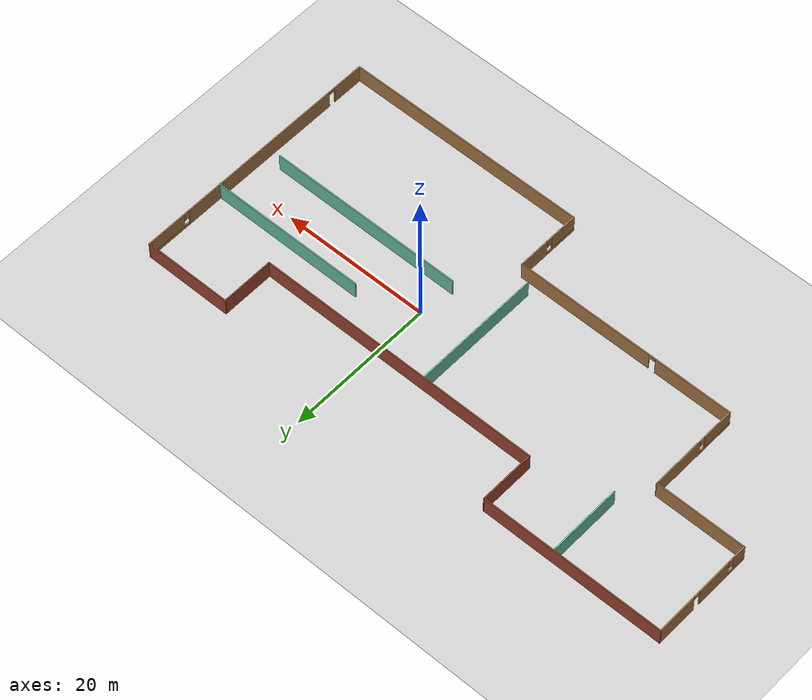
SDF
<sdf version="1.7">
 <world name="default">
  <model name="ground_plane">
   <static>1</static>
   <link name="link">
    <collision name="collision">
     <geometry><plane><normal>0 0 1</normal><size>100 100</size></plane></geometry>
     <surface>
      <contact><collide_bitmask>65535</collide_bitmask></contact>
      <friction><ode><mu>100</mu><mu2>50</mu2></ode></friction>
     </surface>
    </collision>
    <visual name="visual">
     <cast_shadows>0</cast_shadows>
     <geometry><plane><normal>0 0 1</normal><size>100 100</size></plane></geometry>
     <material>
      <script><uri>file://media/materials/scripts/gazebo.material</uri><name>Gazebo/Grey</name></script>
     </material>
    </visual>
   </link>
  </model>
  <model name="model">
   <pose>-9.63268 -2.63043 0 0 -0 0</pose>
   <link name="Wall_10">
    <collision name="Wall_10_Collision">
     <geometry><box><size>7.25 0.15 2.5</size></box></geometry>
     <pose>0 0 1.25 0 -0 0</pose>
    </collision>
    <visual name="Wall_10_Visual">
     <pose>0 0 1.25 0 -0 0</pose>
     <geometry><box><size>7.25 0.15 2.5</size></box></geometry>
     <material>
      <script><uri>file://media/materials/scripts/gazebo.material</uri><name>Gazebo/Bricks</name></script>
      <ambient>1 1 1 1</ambient>
     </material>
     <meta><layer>0</layer></meta>
    </visual>
    <pose>25.763 13.7499 0 0 -0 -1.5708</pose>
   </link>
   <link name="Wall_11">
    <collision name="Wall_11_Collision">
     <geometry><box><size>39 0.15 2.5</size></box></geometry>
     <pose>0 0 1.25 0 -0 0</pose>
    </collision>
    <visual name="Wall_11_Visual">
     <pose>0 0 1.25 0 -0 0</pose>
     <geometry><box><size>39 0.15 2.5</size></box></geometry>
     <material>
      <script><uri>file://media/materials/scripts/gazebo.material</uri><name>Gazebo/Bricks</name></script>
      <ambient>1 1 1 1</ambient>
     </material>
     <meta><layer>0</layer></meta>
    </visual>
    <pose>6.33798 10.1999 0 0 -0 3.14159</pose>
   </link>
   <link name="Wall_12">
    <collision name="Wall_12_Collision">
     <geometry><box><size>7.5 0.15 2.5</size></box></geometry>
     <pose>0 0 1.25 0 -0 0</pose>
    </collision>
    <visual name="Wall_12_Visual">
     <pose>0 0 1.25 0 -0 0</pose>
     <geometry><box><size>7.5 0.15 2.5</size></box></geometry>
     <material>
      <script><uri>file://media/materials/scripts/gazebo.material</uri><name>Gazebo/Bricks</name></script>
      <ambient>1 1 1 1</ambient>
     </material>
     <meta><layer>0</layer></meta>
    </visual>
    <pose>-13.087 13.8749 0 0 -0 1.5708</pose>
   </link>
   <link name="Wall_13">
    <collision name="Wall_13_Collision">
     <geometry><box><size>24.7501 0.15 2.5</size></box></geometry>
     <pose>0 0 1.25 0 -0 0</pose>
    </collision>
    <visual name="Wall_13_Visual">
     <pose>0 0 1.25 0 -0 0</pose>
     <geometry><box><size>24.7501 0.15 2.5</size></box></geometry>
     <material>
      <script><uri>file://media/materials/scripts/gazebo.material</uri><name>Gazebo/Bricks</name></script>
      <ambient>1 1 1 1</ambient>
     </material>
     <meta><layer>0</layer></meta>
    </visual>
    <pose>-25.387 17.5249 0 0 -0 -3.13956</pose>
   </link>
   <link name="Wall_15">
    <collision name="Wall_15_Collision">
     <geometry><box><size>26.75 0.15 2.5</size></box></geometry>
     <pose>0 0 1.25 0 -0 0</pose>
    </collision>
    <visual name="Wall_15_Visual">
     <pose>0 0 1.25 0 -0 0</pose>
     <geometry><box><size>26.75 0.15 2.5</size></box></geometry>
     <material>
      <script><uri>file://media/materials/scripts/gazebo.material</uri><name>Gazebo/Grey</name></script>
      <ambient>0.435294 0.796078 0.67451 1</ambient>
     </material>
     <meta><layer>0</layer></meta>
    </visual>
    <pose>22.0838 -1.70354 0 0 -0 3.14159</pose>
   </link>
   <link name="Wall_18">
    <collision name="Wall_18_Collision">
     <geometry><box><size>21.25 0.15 2.5</size></box></geometry>
     <pose>0 0 1.25 0 -0 0</pose>
    </collision>
    <visual name="Wall_18_Visual">
     <pose>0 0 1.25 0 -0 0</pose>
     <geometry><box><size>21.25 0.15 2.5</size></box></geometry>
     <material>
      <script><uri>file://media/materials/scripts/gazebo.material</uri><name>Gazebo/Grey</name></script>
      <ambient>0.435294 0.796078 0.67451 1</ambient>
     </material>
     <meta><layer>0</layer></meta>
    </visual>
    <pose>27.1372 5.86393 0 0 -0 0</pose>
   </link>
   <link name="Wall_2">
    <pose>-37.687 10.5749 0 0 -0 -1.5708</pose>
    <visual name="Wall_2_Visual_0">
     <pose>-4.21747 0 1.25 0 -0 0</pose>
     <geometry><box><size>5.56506 0.15 2.5</size></box></geometry>
     <material>
      <script><uri>file://media/materials/scripts/gazebo.material</uri><name>Gazebo/Wood</name></script>
      <ambient>1 1 1 1</ambient>
     </material>
     <meta><layer>0</layer></meta>
    </visual>
    <collision name="Wall_2_Collision_0">
     <geometry><box><size>5.56506 0.15 2.5</size></box></geometry>
     <pose>-4.21747 0 1.25 0 -0 0</pose>
    </collision>
    <visual name="Wall_2_Visual_1">
     <pose>1.88803 0 1.25 0 -0 0</pose>
     <geometry><box><size>4.84594 0.15 2.5</size></box></geometry>
     <material>
      <script><uri>file://media/materials/scripts/gazebo.material</uri><name>Gazebo/Wood</name></script>
      <ambient>1 1 1 1</ambient>
     </material>
     <meta><layer>0</layer></meta>
    </visual>
    <collision name="Wall_2_Collision_1">
     <geometry><box><size>4.84594 0.15 2.5</size></box></geometry>
     <pose>1.88803 0 1.25 0 -0 0</pose>
    </collision>
    <visual name="Wall_2_Visual_2">
     <pose>5.6555 0 0.25 0 -0 0</pose>
     <geometry><box><size>2.689 0.15 0.5</size></box></geometry>
     <material>
      <script><uri>file://media/materials/scripts/gazebo.material</uri><name>Gazebo/Wood</name></script>
      <ambient>1 1 1 1</ambient>
     </material>
     <meta><layer>0</layer></meta>
    </visual>
    <collision name="Wall_2_Collision_2">
     <geometry><box><size>2.689 0.15 0.5</size></box></geometry>
     <pose>5.6555 0 0.25 0 -0 0</pose>
    </collision>
    <visual name="Wall_2_Visual_3">
     <pose>6.0555 0 1.5 0 -0 0</pose>
     <geometry><box><size>1.889 0.15 2</size></box></geometry>
     <material>
      <script><uri>file://media/materials/scripts/gazebo.material</uri><name>Gazebo/Wood</name></script>
      <ambient>1 1 1 1</ambient>
     </material>
     <meta><layer>0</layer></meta>
    </visual>
    <collision name="Wall_2_Collision_3">
     <geometry><box><size>1.889 0.15 2</size></box></geometry>
     <pose>6.0555 0 1.5 0 -0 0</pose>
    </collision>
    <visual name="Wall_2_Visual_4">
     <pose>4.711 0 1.9 0 -0 0</pose>
     <geometry><box><size>0.8 0.15 1.2</size></box></geometry>
     <material>
      <script><uri>file://media/materials/scripts/gazebo.material</uri><name>Gazebo/Wood</name></script>
      <ambient>1 1 1 1</ambient>
     </material>
     <meta><layer>0</layer></meta>
    </visual>
    <collision name="Wall_2_Collision_4">
     <geometry><box><size>0.8 0.15 1.2</size></box></geometry>
     <pose>4.711 0 1.9 0 -0 0</pose>
    </collision>
    <visual name="Wall_2_Visual_5">
     <pose>-0.984945 0 2.25 0 -0 0</pose>
     <geometry><box><size>0.9 0.15 0.5</size></box></geometry>
     <material>
      <script><uri>file://media/materials/scripts/gazebo.material</uri><name>Gazebo/Wood</name></script>
      <ambient>1 1 1 1</ambient>
     </material>
     <meta><layer>0</layer></meta>
    </visual>
    <collision name="Wall_2_Collision_5">
     <geometry><box><size>0.9 0.15 0.5</size></box></geometry>
     <pose>-0.984945 0 2.25 0 -0 0</pose>
    </collision>
   </link>
   <link name="Wall_20">
    <collision name="Wall_20_Collision">
     <geometry><box><size>17.5 0.15 2.5</size></box></geometry>
     <pose>0 0 1.25 0 -0 0</pose>
    </collision>
    <visual name="Wall_20_Visual">
     <pose>0 0 1.25 0 -0 0</pose>
     <geometry><box><size>17.5 0.15 2.5</size></box></geometry>
     <material>
      <script><uri>file://media/materials/scripts/gazebo.material</uri><name>Gazebo/Grey</name></script>
      <ambient>0.435294 0.796078 0.67451 1</ambient>
     </material>
     <meta><layer>0</layer></meta>
    </visual>
    <pose>2.34732 1.51963 0 0 -0 1.5708</pose>
   </link>
   <link name="Wall_22">
    <collision name="Wall_22_Collision">
     <geometry><box><size>10 0.15 2.5</size></box></geometry>
     <pose>0 0 1.25 0 -0 0</pose>
    </collision>
    <visual name="Wall_22_Visual">
     <pose>0 0 1.25 0 -0 0</pose>
     <geometry><box><size>10 0.15 2.5</size></box></geometry>
     <material>
      <script><uri>file://media/materials/scripts/gazebo.material</uri><name>Gazebo/Grey</name></script>
      <ambient>0.435294 0.796078 0.67451 1</ambient>
     </material>
     <meta><layer>0</layer></meta>
    </visual>
    <pose>-22.8776 12.4936 0 0 -0 -1.5708</pose>
   </link>
   <link name="Wall_3">
    <collision name="Wall_3_Collision">
     <geometry><box><size>12.25 0.15 2.5</size></box></geometry>
     <pose>0 0 1.25 0 -0 0</pose>
    </collision>
    <visual name="Wall_3_Visual">
     <pose>0 0 1.25 0 -0 0</pose>
     <geometry><box><size>12.25 0.15 2.5</size></box></geometry>
     <material>
      <script><uri>file://media/materials/scripts/gazebo.material</uri><name>Gazebo/Wood</name></script>
      <ambient>1 1 1 1</ambient>
     </material>
     <meta><layer>0</layer></meta>
    </visual>
    <pose>-31.637 3.64993 0 0 -0 0</pose>
   </link>
   <link name="Wall_4">
    <pose>-25.587 -2.52507 0 0 -0 -1.5708</pose>
    <visual name="Wall_4_Visual_0">
     <pose>-2.59658 0 1.25 0 -0 0</pose>
     <geometry><box><size>7.30684 0.15 2.5</size></box></geometry>
     <material>
      <script><uri>file://media/materials/scripts/gazebo.material</uri><name>Gazebo/Wood</name></script>
      <ambient>1 1 1 1</ambient>
     </material>
     <meta><layer>0</layer></meta>
    </visual>
    <collision name="Wall_4_Collision_0">
     <geometry><box><size>7.30684 0.15 2.5</size></box></geometry>
     <pose>-2.59658 0 1.25 0 -0 0</pose>
    </collision>
    <visual name="Wall_4_Visual_1">
     <pose>3.65342 0 0.25 0 -0 0</pose>
     <geometry><box><size>5.19316 0.15 0.5</size></box></geometry>
     <material>
      <script><uri>file://media/materials/scripts/gazebo.material</uri><name>Gazebo/Wood</name></script>
      <ambient>1 1 1 1</ambient>
     </material>
     <meta><layer>0</layer></meta>
    </visual>
    <collision name="Wall_4_Collision_1">
     <geometry><box><size>5.19316 0.15 0.5</size></box></geometry>
     <pose>3.65342 0 0.25 0 -0 0</pose>
    </collision>
    <visual name="Wall_4_Visual_2">
     <pose>4.05342 0 1.5 0 -0 0</pose>
     <geometry><box><size>4.39316 0.15 2</size></box></geometry>
     <material>
      <script><uri>file://media/materials/scripts/gazebo.material</uri><name>Gazebo/Wood</name></script>
      <ambient>1 1 1 1</ambient>
     </material>
     <meta><layer>0</layer></meta>
    </visual>
    <collision name="Wall_4_Collision_2">
     <geometry><box><size>4.39316 0.15 2</size></box></geometry>
     <pose>4.05342 0 1.5 0 -0 0</pose>
    </collision>
    <visual name="Wall_4_Visual_3">
     <pose>1.45684 0 1.9 0 -0 0</pose>
     <geometry><box><size>0.8 0.15 1.2</size></box></geometry>
     <material>
      <script><uri>file://media/materials/scripts/gazebo.material</uri><name>Gazebo/Wood</name></script>
      <ambient>1 1 1 1</ambient>
     </material>
     <meta><layer>0</layer></meta>
    </visual>
    <collision name="Wall_4_Collision_3">
     <geometry><box><size>0.8 0.15 1.2</size></box></geometry>
     <pose>1.45684 0 1.9 0 -0 0</pose>
    </collision>
   </link>
   <link name="Wall_5">
    <pose>-10.537 -8.70007 0 0 -0 0</pose>
    <visual name="Wall_5_Visual_0">
     <pose>-9.80787 0 1.25 0 -0 0</pose>
     <geometry><box><size>10.6343 0.15 2.5</size></box></geometry>
     <material>
      <script><uri>file://media/materials/scripts/gazebo.material</uri><name>Gazebo/Wood</name></script>
      <ambient>1 1 1 1</ambient>
     </material>
     <meta><layer>0</layer></meta>
    </visual>
    <collision name="Wall_5_Collision_0">
     <geometry><box><size>10.6343 0.15 2.5</size></box></geometry>
     <pose>-9.80787 0 1.25 0 -0 0</pose>
    </collision>
    <visual name="Wall_5_Visual_1">
     <pose>5.76713 0 1.25 0 -0 0</pose>
     <geometry><box><size>18.7157 0.15 2.5</size></box></geometry>
     <material>
      <script><uri>file://media/materials/scripts/gazebo.material</uri><name>Gazebo/Wood</name></script>
      <ambient>1 1 1 1</ambient>
     </material>
     <meta><layer>0</layer></meta>
    </visual>
    <collision name="Wall_5_Collision_1">
     <geometry><box><size>18.7157 0.15 2.5</size></box></geometry>
     <pose>5.76713 0 1.25 0 -0 0</pose>
    </collision>
    <visual name="Wall_5_Visual_2">
     <pose>-4.04075 0 2.25 0 -0 0</pose>
     <geometry><box><size>0.9 0.15 0.5</size></box></geometry>
     <material>
      <script><uri>file://media/materials/scripts/gazebo.material</uri><name>Gazebo/Wood</name></script>
      <ambient>1 1 1 1</ambient>
     </material>
     <meta><layer>0</layer></meta>
    </visual>
    <collision name="Wall_5_Collision_2">
     <geometry><box><size>0.9 0.15 0.5</size></box></geometry>
     <pose>-4.04075 0 2.25 0 -0 0</pose>
    </collision>
   </link>
   <link name="Wall_6">
    <pose>4.51298 -13.1251 0 0 -0 -1.5708</pose>
    <visual name="Wall_6_Visual_0">
     <pose>-2.34277 0 1.25 0 -0 0</pose>
     <geometry><box><size>4.31446 0.15 2.5</size></box></geometry>
     <material>
      <script><uri>file://media/materials/scripts/gazebo.material</uri><name>Gazebo/Wood</name></script>
      <ambient>1 1 1 1</ambient>
     </material>
     <meta><layer>0</layer></meta>
    </visual>
    <collision name="Wall_6_Collision_0">
     <geometry><box><size>4.31446 0.15 2.5</size></box></geometry>
     <pose>-2.34277 0 1.25 0 -0 0</pose>
    </collision>
    <visual name="Wall_6_Visual_1">
     <pose>2.15723 0 0.25 0 -0 0</pose>
     <geometry><box><size>4.68554 0.15 0.5</size></box></geometry>
     <material>
      <script><uri>file://media/materials/scripts/gazebo.material</uri><name>Gazebo/Wood</name></script>
      <ambient>1 1 1 1</ambient>
     </material>
     <meta><layer>0</layer></meta>
    </visual>
    <collision name="Wall_6_Collision_1">
     <geometry><box><size>4.68554 0.15 0.5</size></box></geometry>
     <pose>2.15723 0 0.25 0 -0 0</pose>
    </collision>
    <visual name="Wall_6_Visual_2">
     <pose>2.55723 0 1.5 0 -0 0</pose>
     <geometry><box><size>3.88554 0.15 2</size></box></geometry>
     <material>
      <script><uri>file://media/materials/scripts/gazebo.material</uri><name>Gazebo/Wood</name></script>
      <ambient>1 1 1 1</ambient>
     </material>
     <meta><layer>0</layer></meta>
    </visual>
    <collision name="Wall_6_Collision_2">
     <geometry><box><size>3.88554 0.15 2</size></box></geometry>
     <pose>2.55723 0 1.5 0 -0 0</pose>
    </collision>
    <visual name="Wall_6_Visual_3">
     <pose>0.214463 0 1.9 0 -0 0</pose>
     <geometry><box><size>0.8 0.15 1.2</size></box></geometry>
     <material>
      <script><uri>file://media/materials/scripts/gazebo.material</uri><name>Gazebo/Wood</name></script>
      <ambient>1 1 1 1</ambient>
     </material>
     <meta><layer>0</layer></meta>
    </visual>
    <collision name="Wall_6_Collision_3">
     <geometry><box><size>0.8 0.15 1.2</size></box></geometry>
     <pose>0.214463 0 1.9 0 -0 0</pose>
    </collision>
   </link>
   <link name="Wall_7">
    <collision name="Wall_7_Collision">
     <geometry><box><size>33.25 0.15 2.5</size></box></geometry>
     <pose>0 0 1.25 0 -0 0</pose>
    </collision>
    <visual name="Wall_7_Visual">
     <pose>0 0 1.25 0 -0 0</pose>
     <geometry><box><size>33.25 0.15 2.5</size></box></geometry>
     <material>
      <script><uri>file://media/materials/scripts/gazebo.material</uri><name>Gazebo/Wood</name></script>
      <ambient>1 1 1 1</ambient>
     </material>
     <meta><layer>0</layer></meta>
    </visual>
    <pose>21.063 -17.5501 0 0 -0 0</pose>
   </link>
   <link name="Wall_8">
    <pose>37.613 -0.125074 0 0 -0 1.5708</pose>
    <visual name="Wall_8_Visual_0">
     <pose>-15.2974 0 1.25 0 -0 0</pose>
     <geometry><box><size>4.40513 0.15 2.5</size></box></geometry>
     <material>
      <script><uri>file://media/materials/scripts/gazebo.material</uri><name>Gazebo/Wood</name></script>
      <ambient>1 1 1 1</ambient>
     </material>
     <meta><layer>0</layer></meta>
    </visual>
    <collision name="Wall_8_Collision_0">
     <geometry><box><size>4.40513 0.15 2.5</size></box></geometry>
     <pose>-15.2974 0 1.25 0 -0 0</pose>
    </collision>
    <visual name="Wall_8_Visual_1">
     <pose>-0.536333 0 1.25 0 -0 0</pose>
     <geometry><box><size>23.3171 0.15 2.5</size></box></geometry>
     <material>
      <script><uri>file://media/materials/scripts/gazebo.material</uri><name>Gazebo/Wood</name></script>
      <ambient>1 1 1 1</ambient>
     </material>
     <meta><layer>0</layer></meta>
    </visual>
    <collision name="Wall_8_Collision_1">
     <geometry><box><size>23.3171 0.15 2.5</size></box></geometry>
     <pose>-0.536333 0 1.25 0 -0 0</pose>
    </collision>
    <visual name="Wall_8_Visual_2">
     <pose>14.3111 0 0.25 0 -0 0</pose>
     <geometry><box><size>6.3778 0.15 0.5</size></box></geometry>
     <material>
      <script><uri>file://media/materials/scripts/gazebo.material</uri><name>Gazebo/Wood</name></script>
      <ambient>1 1 1 1</ambient>
     </material>
     <meta><layer>0</layer></meta>
    </visual>
    <collision name="Wall_8_Collision_2">
     <geometry><box><size>6.3778 0.15 0.5</size></box></geometry>
     <pose>14.3111 0 0.25 0 -0 0</pose>
    </collision>
    <visual name="Wall_8_Visual_3">
     <pose>14.7111 0 1.5 0 -0 0</pose>
     <geometry><box><size>5.5778 0.15 2</size></box></geometry>
     <material>
      <script><uri>file://media/materials/scripts/gazebo.material</uri><name>Gazebo/Wood</name></script>
      <ambient>1 1 1 1</ambient>
     </material>
     <meta><layer>0</layer></meta>
    </visual>
    <collision name="Wall_8_Collision_3">
     <geometry><box><size>5.5778 0.15 2</size></box></geometry>
     <pose>14.7111 0 1.5 0 -0 0</pose>
    </collision>
    <visual name="Wall_8_Visual_4">
     <pose>11.5222 0 1.9 0 -0 0</pose>
     <geometry><box><size>0.8 0.15 1.2</size></box></geometry>
     <material>
      <script><uri>file://media/materials/scripts/gazebo.material</uri><name>Gazebo/Wood</name></script>
      <ambient>1 1 1 1</ambient>
     </material>
     <meta><layer>0</layer></meta>
    </visual>
    <collision name="Wall_8_Collision_4">
     <geometry><box><size>0.8 0.15 1.2</size></box></geometry>
     <pose>11.5222 0 1.9 0 -0 0</pose>
    </collision>
    <visual name="Wall_8_Visual_5">
     <pose>-12.6449 0 2.25 0 -0 0</pose>
     <geometry><box><size>0.9 0.15 0.5</size></box></geometry>
     <material>
      <script><uri>file://media/materials/scripts/gazebo.material</uri><name>Gazebo/Wood</name></script>
      <ambient>1 1 1 1</ambient>
     </material>
     <meta><layer>0</layer></meta>
    </visual>
    <collision name="Wall_8_Collision_5">
     <geometry><box><size>0.9 0.15 0.5</size></box></geometry>
     <pose>-12.6449 0 2.25 0 -0 0</pose>
    </collision>
   </link>
   <link name="Wall_9">
    <collision name="Wall_9_Collision">
     <geometry><box><size>12 0.15 2.5</size></box></geometry>
     <pose>0 0 1.25 0 -0 0</pose>
    </collision>
    <visual name="Wall_9_Visual">
     <pose>0 0 1.25 0 -0 0</pose>
     <geometry><box><size>12 0.15 2.5</size></box></geometry>
     <material>
      <script><uri>file://media/materials/scripts/gazebo.material</uri><name>Gazebo/Bricks</name></script>
      <ambient>1 1 1 1</ambient>
     </material>
     <meta><layer>0</layer></meta>
    </visual>
    <pose>31.688 17.2999 0 0 -0 3.14159</pose>
   </link>
   <static>1</static>
  </model>
 </world>
</sdf>
